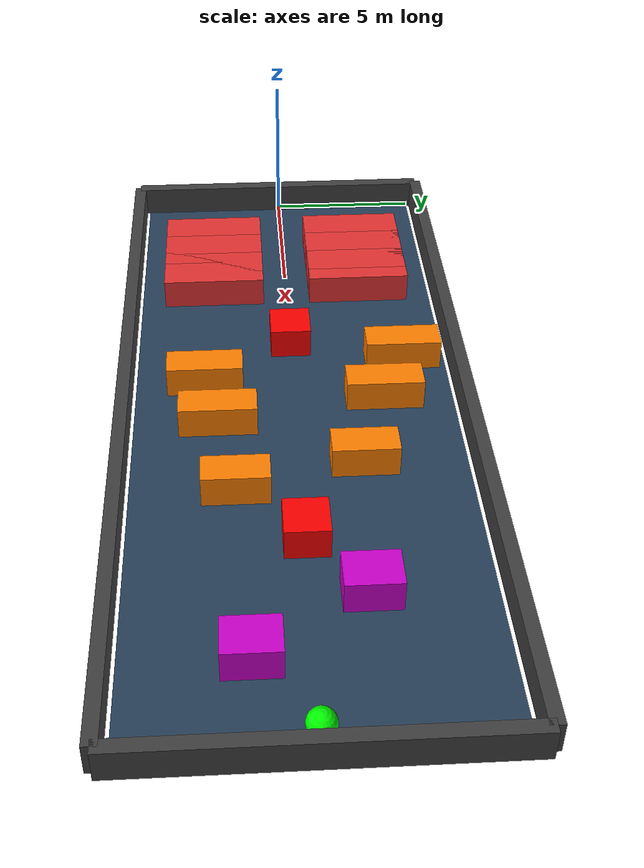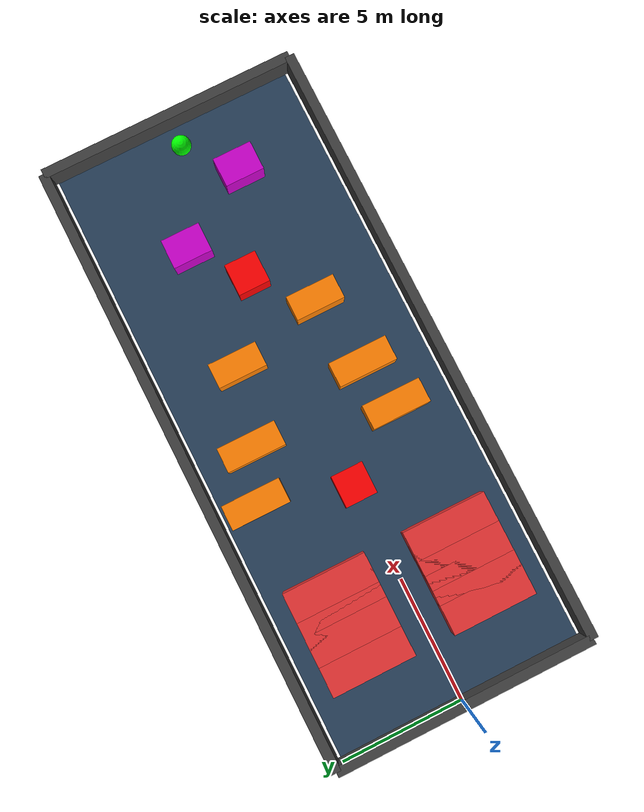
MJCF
<mujoco model="Empty_Corridor3_25m">

  <!-- COMPILER + OPTION -->
  <compiler angle="radian" coordinate="local" autolimits="true"/>
  <option timestep="0.01" cone="elliptic" integrator="RK4" gravity="0 0 -9.81"/>

  <!-- VISUAL STYLE (bunker style) -->
  <visual>
    <headlight diffuse="0.6 0.6 0.6"
               ambient="0.1 0.1 0.1"
               specular="0 0 0"/>

    <rgba haze="0.15 0.25 0.35 1"/>

    <global azimuth="135"
            elevation="-28"/>
  </visual>

  <!-- ASSETS (ground texture style giống bunker) -->
  <asset>
    <texture type="skybox"
             builtin="gradient"
             rgb1="0.3 0.5 0.7"
             rgb2="0 0 0"
             width="512"
             height="3072"/>

    <texture type="2d"
             name="groundplane"
             builtin="checker"
             mark="edge"
             rgb1="0.2 0.3 0.4"
             rgb2="0.1 0.2 0.3"
             markrgb="0.8 0.8 0.8"
             width="300"
             height="300"/>

    <material name="groundplane"
              texture="groundplane"
              texuniform="true"
              texrepeat="5 5"
              reflectance="0.2"/>
  </asset>

  <!-- WORLD -->
  <worldbody>

    <!-- LIGHT -->
    <light name="spotlight"
           pos="0 0 100"
           mode="targetbodycom"
           target="goal"
           castshadow="false"/>

    <!-- FLOOR (giữ nguyên nhưng đổi style bunker) -->
    <geom name="floor"
          type="plane"
          pos="12.5 0 0"
          size="12.5 5 0.05"
          material="groundplane"
          conaffinity="1"
          condim="3"/>

        <!-- WALLS -->
        <geom type="box" pos="12.5 5.3 0.5" size="12.5 0.2 0.5" rgba="0.25 0.25 0.25 1"/>
        <geom type="box" pos="12.5 -5.3 0.5" size="12.5 0.2 0.5" rgba="0.25 0.25 0.25 1"/>
        <geom type="box" pos="0 0 0.5" size="0.2 5.3 0.5" rgba="0.25 0.25 0.25 1"/>
        <geom type="box" pos="25 0 0.5" size="0.2 5.3 0.5" rgba="0.25 0.25 0.25 1"/>

        <!-- LONG PASSAGE (BOTTLENECK) -->
        <!-- width ~0.8m gap -->

        <!-- left wall -->
        <geom type="box" pos="3.0  2.5 0.5" size="0.6 1.7 0.5" rgba="0.9 0.2 0.2 1"/>
        <geom type="box" pos="3.6  2.5 0.5" size="0.6 1.7 0.5" rgba="0.9 0.2 0.2 1"/>
        <geom type="box" pos="4.2  2.5 0.5" size="0.6 1.7 0.5" rgba="0.9 0.2 0.2 1"/>
        <geom type="box" pos="4.8  2.5 0.5" size="0.6 1.7 0.5" rgba="0.9 0.2 0.2 1"/>
        <geom type="box" pos="5.4  2.5 0.5" size="0.6 1.7 0.5" rgba="0.9 0.2 0.2 1"/>
        <geom type="box" pos="6.0  2.5 0.5" size="0.6 1.7 0.5" rgba="0.9 0.2 0.2 1"/>

        <!-- right wall -->
        <geom type="box" pos="3.0  -2.5 0.5" size="0.6 1.7 0.5" rgba="0.9 0.2 0.2 1"/>
        <geom type="box" pos="3.6  -2.5 0.5" size="0.6 1.7 0.5" rgba="0.9 0.2 0.2 1"/>
        <geom type="box" pos="4.2  -2.5 0.5" size="0.6 1.7 0.5" rgba="0.9 0.2 0.2 1"/>
        <geom type="box" pos="4.8  -2.5 0.5" size="0.6 1.7 0.5" rgba="0.9 0.2 0.2 1"/>
        <geom type="box" pos="5.4  -2.5 0.5" size="0.6 1.7 0.5" rgba="0.9 0.2 0.2 1"/>
        <geom type="box" pos="6.0  -2.5 0.5" size="0.6 1.7 0.5" rgba="0.9 0.2 0.2 1"/>

        <!-- exit of passage -->
        <geom type="box" pos="9 0 0.5" size="0.65 0.65 0.5" rgba="1 0 0 1"/>

        <!-- IMMEDIATE ZIGZAG (RIGHT AFTER EXIT) -->

        <geom type="box" pos="10  3.6 0.5" size="0.5 1.2 0.5" rgba="1 0.5 0 1"/>
        <geom type="box" pos="11 -2.8 0.5" size="0.5 1.2 0.5" rgba="1 0.5 0 1"/>
        <geom type="box" pos="12  2.8 0.5" size="0.5 1.2 0.5" rgba="1 0.5 0 1"/>
        <geom type="box" pos="13 -2.4 0.5" size="0.5 1.2 0.5" rgba="1 0.5 0 1"/>

        <!-- more irregular zigzag -->
        <geom type="box" pos="15  1.9 0.5" size="0.5 1.0 0.5" rgba="1 0.5 0 1"/>
        <geom type="box" pos="16 -1.9 0.5" size="0.5 1.0 0.5" rgba="1 0.5 0 1"/>

        <!-- MID ZONE -->

        <geom type="box" pos="18 0 0.5" size="0.65 0.65 0.5" rgba="1 0 0 1"/>

        <geom type="box" pos="20  1.6 0.5" size="0.6 0.8 0.5" rgba="0.8 0 0.8 1"/>
        <geom type="box" pos="22 -1.6 0.5" size="0.6 0.8 0.5" rgba="0.8 0 0.8 1"/>

        <!-- FINAL ZONE -->

        <!-- GOAL -->
        <body name="goal" pos="24 0 0.1" mocap="true">
            <site name="goal_site" type="sphere" size="0.4" rgba="0 1 0 1"/>
        </body>

    </worldbody>
</mujoco>
